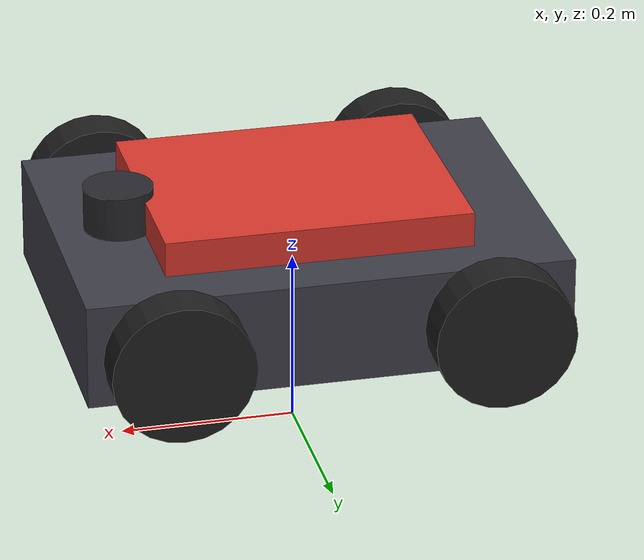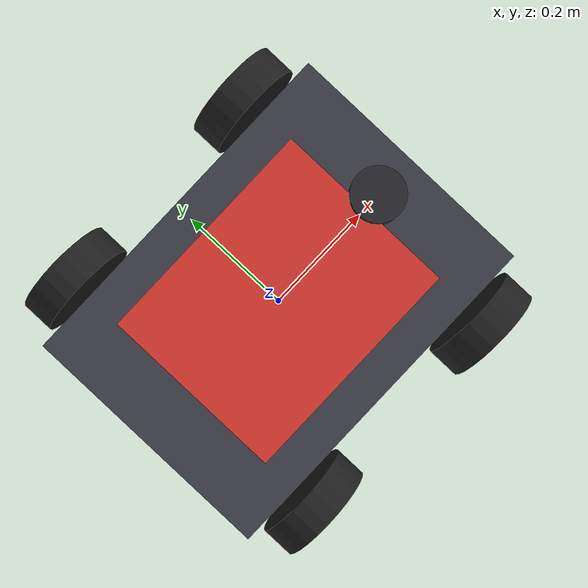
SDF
<?xml version="1.0"?>
<sdf version="1.9">
  <model name="kibot_one_base">
    <pose>0 0 0.12 0 0 0</pose>
    <self_collide>false</self_collide>

    <link name="base_link">
      <pose>0 0 0.08 0 0 0</pose>
      <inertial>
        <mass>12.0</mass>
        <inertia>
          <ixx>0.18</ixx>
          <ixy>0.0</ixy>
          <ixz>0.0</ixz>
          <iyy>0.38</iyy>
          <iyz>0.0</iyz>
          <izz>0.50</izz>
        </inertia>
      </inertial>
      <collision name="chassis_collision">
        <geometry>
          <box>
            <size>0.55 0.40 0.12</size>
          </box>
        </geometry>
      </collision>
      <visual name="chassis_visual">
        <geometry>
          <box>
            <size>0.55 0.40 0.12</size>
          </box>
        </geometry>
        <material>
          <ambient>0.18 0.18 0.20 1</ambient>
          <diffuse>0.24 0.24 0.28 1</diffuse>
          <specular>0.05 0.05 0.05 1</specular>
        </material>
      </visual>
      <visual name="deck_visual">
        <pose>0 0 0.08 0 0 0</pose>
        <geometry>
          <box>
            <size>0.35 0.28 0.04</size>
          </box>
        </geometry>
        <material>
          <ambient>0.75 0.18 0.12 1</ambient>
          <diffuse>0.85 0.22 0.18 1</diffuse>
          <specular>0.08 0.08 0.08 1</specular>
        </material>
      </visual>
    </link>

    <link name="front_left_wheel">
      <pose>0.18 0.24 0.08 1.5708 0 0</pose>
      <inertial>
        <mass>1.0</mass>
        <inertia>
          <ixx>0.0026</ixx>
          <ixy>0.0</ixy>
          <ixz>0.0</ixz>
          <iyy>0.0026</iyy>
          <iyz>0.0</iyz>
          <izz>0.0045</izz>
        </inertia>
      </inertial>
      <collision name="front_left_wheel_collision">
        <geometry>
          <cylinder>
            <radius>0.08</radius>
            <length>0.05</length>
          </cylinder>
        </geometry>
        <surface>
          <friction>
            <ode>
              <mu>1.2</mu>
              <mu2>1.2</mu2>
            </ode>
          </friction>
        </surface>
      </collision>
      <visual name="front_left_wheel_visual">
        <geometry>
          <cylinder>
            <radius>0.08</radius>
            <length>0.05</length>
          </cylinder>
        </geometry>
        <material>
          <ambient>0.08 0.08 0.08 1</ambient>
          <diffuse>0.12 0.12 0.12 1</diffuse>
          <specular>0.01 0.01 0.01 1</specular>
        </material>
      </visual>
    </link>

    <link name="front_right_wheel">
      <pose>0.18 -0.24 0.08 1.5708 0 0</pose>
      <inertial>
        <mass>1.0</mass>
        <inertia>
          <ixx>0.0026</ixx>
          <ixy>0.0</ixy>
          <ixz>0.0</ixz>
          <iyy>0.0026</iyy>
          <iyz>0.0</iyz>
          <izz>0.0045</izz>
        </inertia>
      </inertial>
      <collision name="front_right_wheel_collision">
        <geometry>
          <cylinder>
            <radius>0.08</radius>
            <length>0.05</length>
          </cylinder>
        </geometry>
        <surface>
          <friction>
            <ode>
              <mu>1.2</mu>
              <mu2>1.2</mu2>
            </ode>
          </friction>
        </surface>
      </collision>
      <visual name="front_right_wheel_visual">
        <geometry>
          <cylinder>
            <radius>0.08</radius>
            <length>0.05</length>
          </cylinder>
        </geometry>
        <material>
          <ambient>0.08 0.08 0.08 1</ambient>
          <diffuse>0.12 0.12 0.12 1</diffuse>
          <specular>0.01 0.01 0.01 1</specular>
        </material>
      </visual>
    </link>

    <link name="rear_left_wheel">
      <pose>-0.18 0.24 0.08 1.5708 0 0</pose>
      <inertial>
        <mass>1.0</mass>
        <inertia>
          <ixx>0.0026</ixx>
          <ixy>0.0</ixy>
          <ixz>0.0</ixz>
          <iyy>0.0026</iyy>
          <iyz>0.0</iyz>
          <izz>0.0045</izz>
        </inertia>
      </inertial>
      <collision name="rear_left_wheel_collision">
        <geometry>
          <cylinder>
            <radius>0.08</radius>
            <length>0.05</length>
          </cylinder>
        </geometry>
        <surface>
          <friction>
            <ode>
              <mu>1.2</mu>
              <mu2>1.2</mu2>
            </ode>
          </friction>
        </surface>
      </collision>
      <visual name="rear_left_wheel_visual">
        <geometry>
          <cylinder>
            <radius>0.08</radius>
            <length>0.05</length>
          </cylinder>
        </geometry>
        <material>
          <ambient>0.08 0.08 0.08 1</ambient>
          <diffuse>0.12 0.12 0.12 1</diffuse>
          <specular>0.01 0.01 0.01 1</specular>
        </material>
      </visual>
    </link>

    <link name="rear_right_wheel">
      <pose>-0.18 -0.24 0.08 1.5708 0 0</pose>
      <inertial>
        <mass>1.0</mass>
        <inertia>
          <ixx>0.0026</ixx>
          <ixy>0.0</ixy>
          <ixz>0.0</ixz>
          <iyy>0.0026</iyy>
          <iyz>0.0</iyz>
          <izz>0.0045</izz>
        </inertia>
      </inertial>
      <collision name="rear_right_wheel_collision">
        <geometry>
          <cylinder>
            <radius>0.08</radius>
            <length>0.05</length>
          </cylinder>
        </geometry>
        <surface>
          <friction>
            <ode>
              <mu>1.2</mu>
              <mu2>1.2</mu2>
            </ode>
          </friction>
        </surface>
      </collision>
      <visual name="rear_right_wheel_visual">
        <geometry>
          <cylinder>
            <radius>0.08</radius>
            <length>0.05</length>
          </cylinder>
        </geometry>
        <material>
          <ambient>0.08 0.08 0.08 1</ambient>
          <diffuse>0.12 0.12 0.12 1</diffuse>
          <specular>0.01 0.01 0.01 1</specular>
        </material>
      </visual>
    </link>

    <link name="lidar_link">
      <pose>0.20 0 0.165 0 0 0</pose>
      <inertial>
        <mass>0.20</mass>
        <inertia>
          <ixx>0.0005</ixx>
          <ixy>0.0</ixy>
          <ixz>0.0</ixz>
          <iyy>0.0005</iyy>
          <iyz>0.0</iyz>
          <izz>0.0005</izz>
        </inertia>
      </inertial>
      <collision name="lidar_collision">
        <geometry>
          <cylinder>
            <radius>0.04</radius>
            <length>0.05</length>
          </cylinder>
        </geometry>
      </collision>
      <visual name="lidar_visual">
        <geometry>
          <cylinder>
            <radius>0.04</radius>
            <length>0.05</length>
          </cylinder>
        </geometry>
        <material>
          <ambient>0.10 0.10 0.12 1</ambient>
          <diffuse>0.16 0.16 0.18 1</diffuse>
          <specular>0.05 0.05 0.05 1</specular>
        </material>
      </visual>
      <sensor name="top_lidar" type="gpu_lidar">
        <topic>/scan</topic>
        <update_rate>20</update_rate>
        <always_on>true</always_on>
        <visualize>true</visualize>
        <gz_frame_id>lidar_link</gz_frame_id>
        <lidar>
          <scan>
            <horizontal>
              <samples>720</samples>
              <resolution>1</resolution>
              <min_angle>-3.14159</min_angle>
              <max_angle>3.14159</max_angle>
            </horizontal>
          </scan>
          <range>
            <min>0.12</min>
            <max>12.0</max>
            <resolution>0.01</resolution>
          </range>
          <noise>
            <type>gaussian</type>
            <mean>0.0</mean>
            <stddev>0.005</stddev>
          </noise>
        </lidar>
      </sensor>
    </link>

    <joint name="front_left_wheel_joint" type="revolute">
      <parent>base_link</parent>
      <child>front_left_wheel</child>
      <axis>
        <xyz expressed_in="__model__">0 1 0</xyz>
        <limit>
          <lower>-1e16</lower>
          <upper>1e16</upper>
        </limit>
        <dynamics>
          <damping>0.2</damping>
          <friction>0.05</friction>
        </dynamics>
      </axis>
    </joint>

    <joint name="front_right_wheel_joint" type="revolute">
      <parent>base_link</parent>
      <child>front_right_wheel</child>
      <axis>
        <xyz expressed_in="__model__">0 1 0</xyz>
        <limit>
          <lower>-1e16</lower>
          <upper>1e16</upper>
        </limit>
        <dynamics>
          <damping>0.2</damping>
          <friction>0.05</friction>
        </dynamics>
      </axis>
    </joint>

    <joint name="rear_left_wheel_joint" type="revolute">
      <parent>base_link</parent>
      <child>rear_left_wheel</child>
      <axis>
        <xyz expressed_in="__model__">0 1 0</xyz>
        <limit>
          <lower>-1e16</lower>
          <upper>1e16</upper>
        </limit>
        <dynamics>
          <damping>0.2</damping>
          <friction>0.05</friction>
        </dynamics>
      </axis>
    </joint>

    <joint name="rear_right_wheel_joint" type="revolute">
      <parent>base_link</parent>
      <child>rear_right_wheel</child>
      <axis>
        <xyz expressed_in="__model__">0 1 0</xyz>
        <limit>
          <lower>-1e16</lower>
          <upper>1e16</upper>
        </limit>
        <dynamics>
          <damping>0.2</damping>
          <friction>0.05</friction>
        </dynamics>
      </axis>
    </joint>

    <joint name="lidar_joint" type="fixed">
      <parent>base_link</parent>
      <child>lidar_link</child>
    </joint>

    <link name="camera_link">
      <pose>0.29 0 0.24 0 0 0</pose>
      <sensor name="front_camera" type="camera">
        <topic>/camera/image_raw</topic>
        <update_rate>15</update_rate>
        <always_on>true</always_on>
        <visualize>true</visualize>
        <gz_frame_id>camera_link</gz_frame_id>
        <camera>
          <horizontal_fov>1.047</horizontal_fov>
          <image>
            <width>320</width>
            <height>240</height>
            <format>R8G8B8</format>
          </image>
          <clip>
            <near>0.05</near>
            <far>8.0</far>
          </clip>
        </camera>
      </sensor>
    </link>

    <joint name="camera_joint" type="fixed">
      <parent>base_link</parent>
      <child>camera_link</child>
    </joint>

    <plugin
      filename="gz-sim-pose-publisher-system"
      name="gz::sim::systems::PosePublisher">
      <publish_model_pose>true</publish_model_pose>
      <publish_link_pose>false</publish_link_pose>
      <use_pose_vector_msg>false</use_pose_vector_msg>
      <static_publisher>false</static_publisher>
      <update_frequency>20</update_frequency>
    </plugin>

    <plugin
      filename="gz-sim-diff-drive-system"
      name="gz::sim::systems::DiffDrive">
      <left_joint>front_left_wheel_joint</left_joint>
      <left_joint>rear_left_wheel_joint</left_joint>
      <right_joint>front_right_wheel_joint</right_joint>
      <right_joint>rear_right_wheel_joint</right_joint>

      <wheel_separation>0.48</wheel_separation>
      <wheel_radius>0.08</wheel_radius>

      <topic>/model/kibot_one_base/cmd_vel</topic>
      <odom_topic>/model/kibot_one_base/odometry</odom_topic>
      <tf_topic>/model/kibot_one_base/tf</tf_topic>

      <frame_id>odom</frame_id>
      <child_frame_id>base_link</child_frame_id>

      <odom_publish_frequency>50</odom_publish_frequency>

      <max_linear_velocity>0.8</max_linear_velocity>
      <min_linear_velocity>-0.8</min_linear_velocity>
      <max_angular_velocity>1.5</max_angular_velocity>
      <min_angular_velocity>-1.5</min_angular_velocity>
      <max_linear_acceleration>0.8</max_linear_acceleration>
      <min_linear_acceleration>-0.8</min_linear_acceleration>
      <max_angular_acceleration>1.5</max_angular_acceleration>
      <min_angular_acceleration>-1.5</min_angular_acceleration>
    </plugin>

  </model>
</sdf>
